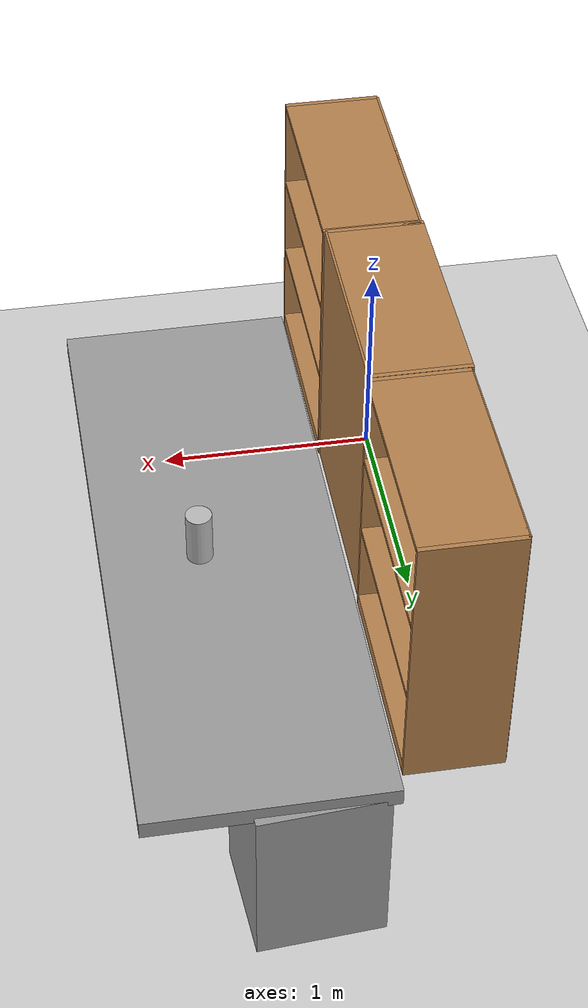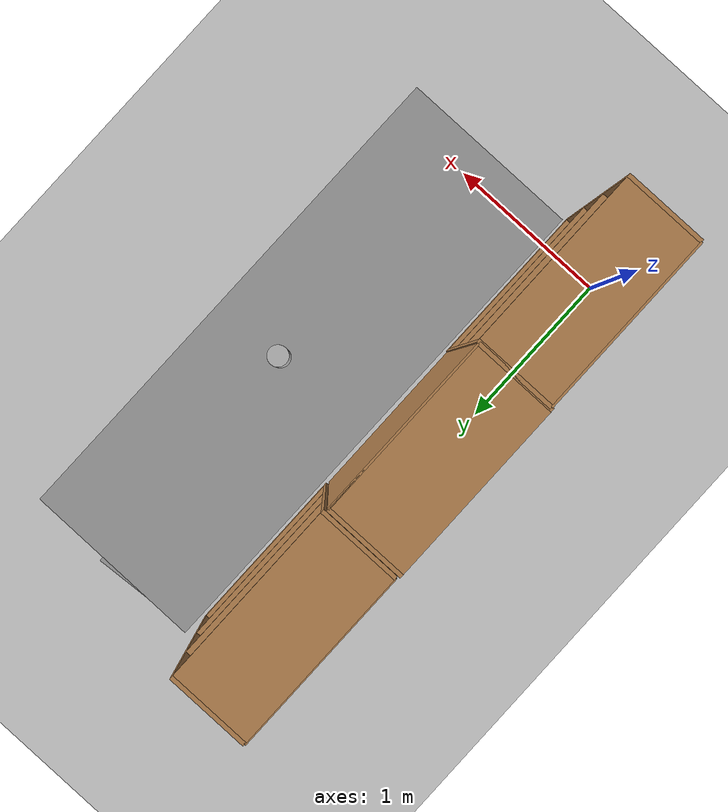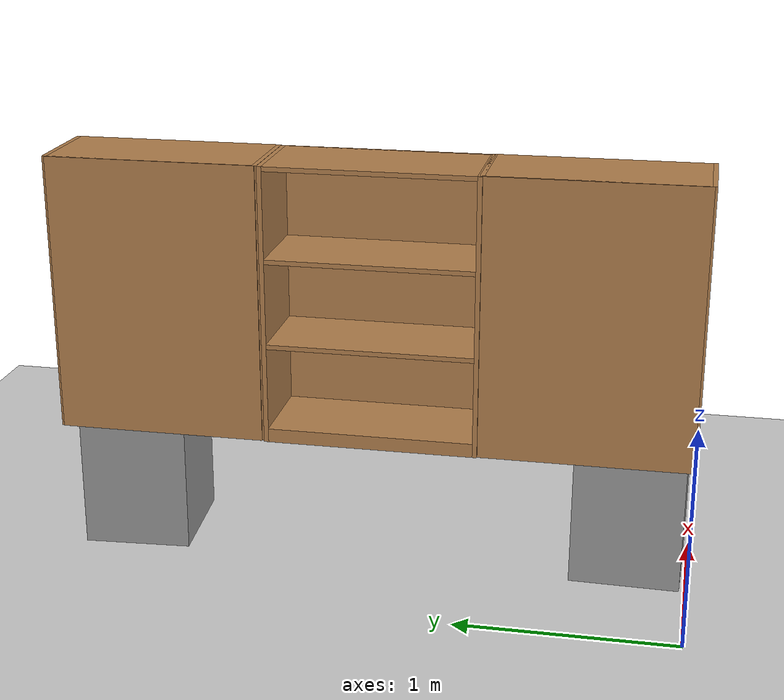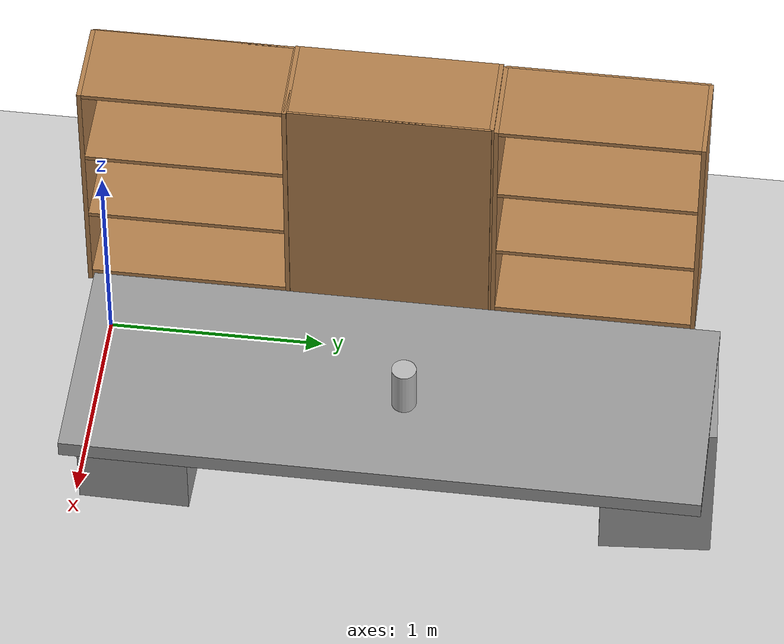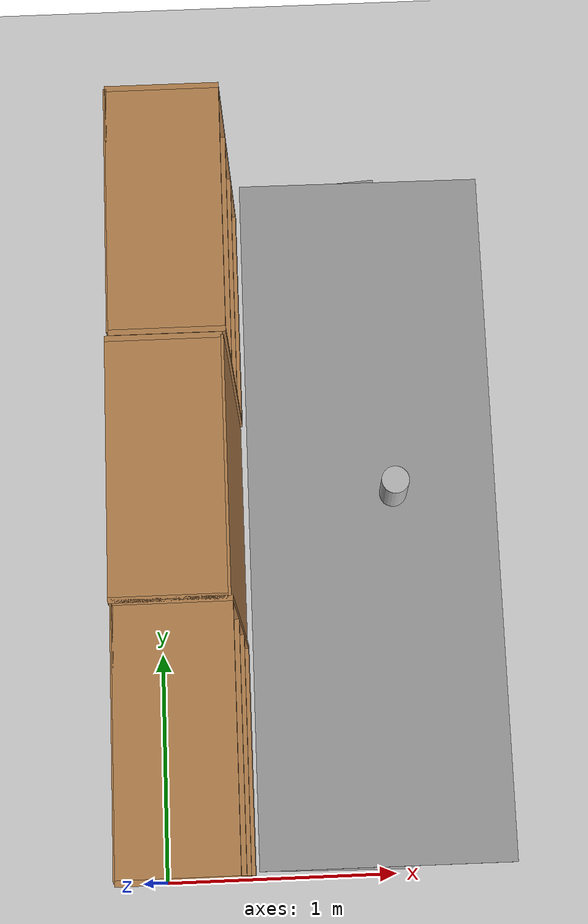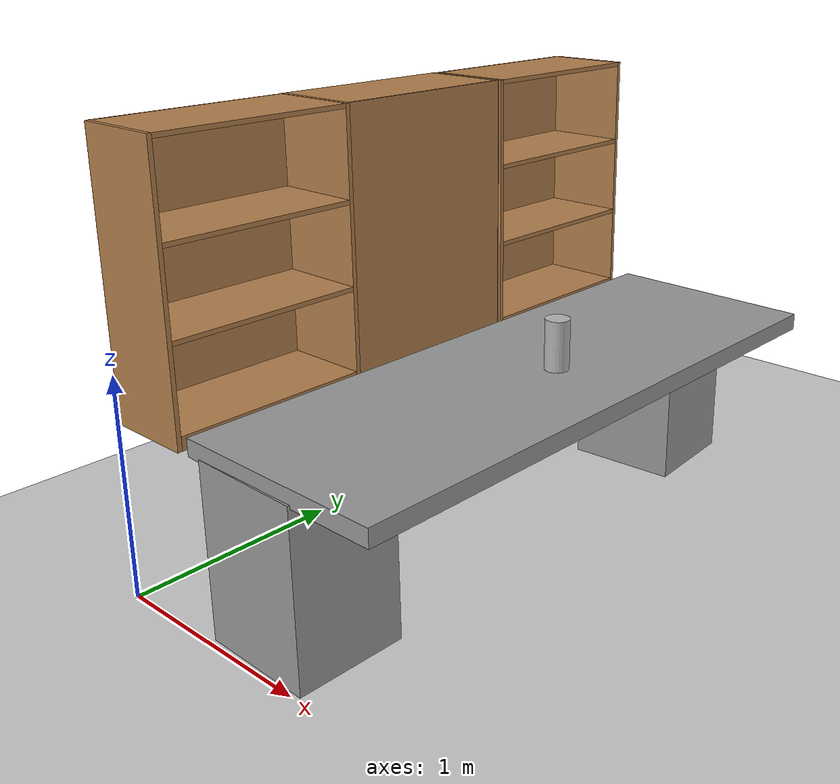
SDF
<sdf version="1.6">
 <world name="default">
  <light name="sun" type="directional">
   <pose>0 0 10 0 -0 0</pose>
   <diffuse>0.8 0.8 0.8 1</diffuse>
   <specular>0.1 0.1 0.1 1</specular>
   <attenuation>
    <range>1000</range>
    <constant>0.9</constant>
    <linear>0.01</linear>
    <quadratic>0.001</quadratic>
   </attenuation>
   <direction>-0.5 0.5 -1</direction>
  </light>
  <model name="ground_plane">
   <static>1</static>
   <link name="link">
    <collision name="collision">
     <geometry><plane><normal>0 0 1</normal><size>100 100</size></plane></geometry>
     <surface><friction><ode><mu>100</mu><mu2>50</mu2></ode></friction></surface>
    </collision>
    <visual name="visual">
     <cast_shadows>0</cast_shadows>
     <geometry><plane><normal>0 0 1</normal><size>100 100</size></plane></geometry>
     <material>
      <script><uri>file://media/materials/scripts/gazebo.material</uri><name>Gazebo/Grey</name></script>
     </material>
    </visual>
   </link>
  </model>
  <gravity>0 0 -9.8</gravity>
  <magnetic_field>6e-06 2.3e-05 -4.2e-05</magnetic_field>
  <atmosphere type="adiabatic"/>
  <physics name="default_physics" default="0" type="ode">
   <max_step_size>0.001</max_step_size>
   <real_time_factor>1</real_time_factor>
   <real_time_update_rate>1000</real_time_update_rate>
  </physics>
  <scene><ambient>0.4 0.4 0.4 1</ambient><background>0.7 0.7 0.7 1</background><shadows>1</shadows></scene>
  <spherical_coordinates>
   <surface_model>EARTH_WGS84</surface_model>
   <latitude_deg>0</latitude_deg>
   <longitude_deg>0</longitude_deg>
   <elevation>0</elevation>
   <heading_deg>0</heading_deg>
  </spherical_coordinates>
  <model name="bookshelf">
   <static>1</static>
   <link name="link">
    <inertial><mass>1</mass></inertial>
    <collision name="back">
     <pose>0 0.005 0.6 0 -0 0</pose>
     <geometry><box><size>0.9 0.01 1.2</size></box></geometry>
    </collision>
    <visual name="visual1">
     <pose>0 0.005 0.6 0 -0 0</pose>
     <geometry><box><size>0.9 0.01 1.2</size></box></geometry>
     <material>
      <script><uri>file://media/materials/scripts/gazebo.material</uri><name>Gazebo/Wood</name></script>
     </material>
    </visual>
    <collision name="left_side">
     <pose>0.45 -0.195 0.6 0 -0 0</pose>
     <geometry><box><size>0.02 0.4 1.2</size></box></geometry>
    </collision>
    <visual name="visual2">
     <pose>0.45 -0.195 0.6 0 -0 0</pose>
     <geometry><box><size>0.02 0.4 1.2</size></box></geometry>
     <material>
      <script><uri>file://media/materials/scripts/gazebo.material</uri><name>Gazebo/Wood</name></script>
     </material>
    </visual>
    <collision name="right_side">
     <pose>-0.45 -0.195 0.6 0 -0 0</pose>
     <geometry><box><size>0.02 0.4 1.2</size></box></geometry>
    </collision>
    <visual name="visual3">
     <pose>-0.45 -0.195 0.6 0 -0 0</pose>
     <geometry><box><size>0.02 0.4 1.2</size></box></geometry>
     <material>
      <script><uri>file://media/materials/scripts/gazebo.material</uri><name>Gazebo/Wood</name></script>
     </material>
    </visual>
    <collision name="bottom">
     <pose>0 -0.195 0.03 0 -0 0</pose>
     <geometry><box><size>0.88 0.4 0.06</size></box></geometry>
    </collision>
    <visual name="visual4">
     <pose>0 -0.195 0.03 0 -0 0</pose>
     <geometry><box><size>0.88 0.4 0.06</size></box></geometry>
     <material>
      <script><uri>file://media/materials/scripts/gazebo.material</uri><name>Gazebo/Wood</name></script>
     </material>
    </visual>
    <collision name="top">
     <pose>0 -0.195 1.19 0 -0 0</pose>
     <geometry><box><size>0.88 0.4 0.02</size></box></geometry>
    </collision>
    <visual name="visual5">
     <pose>0 -0.195 1.19 0 -0 0</pose>
     <geometry><box><size>0.88 0.4 0.02</size></box></geometry>
     <material>
      <script><uri>file://media/materials/scripts/gazebo.material</uri><name>Gazebo/Wood</name></script>
     </material>
    </visual>
    <collision name="low_shelf">
     <pose>0 -0.195 0.43 0 -0 0</pose>
     <geometry><box><size>0.88 0.4 0.02</size></box></geometry>
    </collision>
    <visual name="visual6">
     <pose>0 -0.195 0.43 0 -0 0</pose>
     <geometry><box><size>0.88 0.4 0.02</size></box></geometry>
     <material>
      <script><uri>file://media/materials/scripts/gazebo.material</uri><name>Gazebo/Wood</name></script>
     </material>
    </visual>
    <collision name="high_shelf">
     <pose>0 -0.195 0.8 0 -0 0</pose>
     <geometry><box><size>0.88 0.4 0.02</size></box></geometry>
    </collision>
    <visual name="visual7">
     <pose>0 -0.195 0.8 0 -0 0</pose>
     <geometry><box><size>0.88 0.4 0.02</size></box></geometry>
     <material>
      <script><uri>file://media/materials/scripts/gazebo.material</uri><name>Gazebo/Wood</name></script>
     </material>
    </visual>
   </link>
   <pose>0.022649 0.455872 0.8 0 -0 1.5708</pose>
  </model>
  <model name="bookshelf_clone">
   <static>1</static>
   <link name="link">
    <inertial><mass>1</mass></inertial>
    <collision name="back">
     <pose>0 0.005 0.6 0 -0 0</pose>
     <geometry><box><size>0.9 0.01 1.2</size></box></geometry>
    </collision>
    <visual name="visual1">
     <pose>0 0.005 0.6 0 -0 0</pose>
     <geometry><box><size>0.9 0.01 1.2</size></box></geometry>
     <material>
      <script><uri>file://media/materials/scripts/gazebo.material</uri><name>Gazebo/Wood</name></script>
     </material>
    </visual>
    <collision name="left_side">
     <pose>0.45 -0.195 0.6 0 -0 0</pose>
     <geometry><box><size>0.02 0.4 1.2</size></box></geometry>
    </collision>
    <visual name="visual2">
     <pose>0.45 -0.195 0.6 0 -0 0</pose>
     <geometry><box><size>0.02 0.4 1.2</size></box></geometry>
     <material>
      <script><uri>file://media/materials/scripts/gazebo.material</uri><name>Gazebo/Wood</name></script>
     </material>
    </visual>
    <collision name="right_side">
     <pose>-0.45 -0.195 0.6 0 -0 0</pose>
     <geometry><box><size>0.02 0.4 1.2</size></box></geometry>
    </collision>
    <visual name="visual3">
     <pose>-0.45 -0.195 0.6 0 -0 0</pose>
     <geometry><box><size>0.02 0.4 1.2</size></box></geometry>
     <material>
      <script><uri>file://media/materials/scripts/gazebo.material</uri><name>Gazebo/Wood</name></script>
     </material>
    </visual>
    <collision name="bottom">
     <pose>0 -0.195 0.03 0 -0 0</pose>
     <geometry><box><size>0.88 0.4 0.06</size></box></geometry>
    </collision>
    <visual name="visual4">
     <pose>0 -0.195 0.03 0 -0 0</pose>
     <geometry><box><size>0.88 0.4 0.06</size></box></geometry>
     <material>
      <script><uri>file://media/materials/scripts/gazebo.material</uri><name>Gazebo/Wood</name></script>
     </material>
    </visual>
    <collision name="top">
     <pose>0 -0.195 1.19 0 -0 0</pose>
     <geometry><box><size>0.88 0.4 0.02</size></box></geometry>
    </collision>
    <visual name="visual5">
     <pose>0 -0.195 1.19 0 -0 0</pose>
     <geometry><box><size>0.88 0.4 0.02</size></box></geometry>
     <material>
      <script><uri>file://media/materials/scripts/gazebo.material</uri><name>Gazebo/Wood</name></script>
     </material>
    </visual>
    <collision name="low_shelf">
     <pose>0 -0.195 0.43 0 -0 0</pose>
     <geometry><box><size>0.88 0.4 0.02</size></box></geometry>
    </collision>
    <visual name="visual6">
     <pose>0 -0.195 0.43 0 -0 0</pose>
     <geometry><box><size>0.88 0.4 0.02</size></box></geometry>
     <material>
      <script><uri>file://media/materials/scripts/gazebo.material</uri><name>Gazebo/Wood</name></script>
     </material>
    </visual>
    <collision name="high_shelf">
     <pose>0 -0.195 0.8 0 -0 0</pose>
     <geometry><box><size>0.88 0.4 0.02</size></box></geometry>
    </collision>
    <visual name="visual7">
     <pose>0 -0.195 0.8 0 -0 0</pose>
     <geometry><box><size>0.88 0.4 0.02</size></box></geometry>
     <material>
      <script><uri>file://media/materials/scripts/gazebo.material</uri><name>Gazebo/Wood</name></script>
     </material>
    </visual>
   </link>
   <pose>0.401819 1.3624 0.8 0 0 -1.5708</pose>
  </model>
  <model name="bookshelf_clone_0">
   <static>1</static>
   <link name="link">
    <inertial><mass>1</mass></inertial>
    <collision name="back">
     <pose>0 0.005 0.6 0 -0 0</pose>
     <geometry><box><size>0.9 0.01 1.2</size></box></geometry>
    </collision>
    <visual name="visual1">
     <pose>0 0.005 0.6 0 -0 0</pose>
     <geometry><box><size>0.9 0.01 1.2</size></box></geometry>
     <material>
      <script><uri>file://media/materials/scripts/gazebo.material</uri><name>Gazebo/Wood</name></script>
     </material>
    </visual>
    <collision name="left_side">
     <pose>0.45 -0.195 0.6 0 -0 0</pose>
     <geometry><box><size>0.02 0.4 1.2</size></box></geometry>
    </collision>
    <visual name="visual2">
     <pose>0.45 -0.195 0.6 0 -0 0</pose>
     <geometry><box><size>0.02 0.4 1.2</size></box></geometry>
     <material>
      <script><uri>file://media/materials/scripts/gazebo.material</uri><name>Gazebo/Wood</name></script>
     </material>
    </visual>
    <collision name="right_side">
     <pose>-0.45 -0.195 0.6 0 -0 0</pose>
     <geometry><box><size>0.02 0.4 1.2</size></box></geometry>
    </collision>
    <visual name="visual3">
     <pose>-0.45 -0.195 0.6 0 -0 0</pose>
     <geometry><box><size>0.02 0.4 1.2</size></box></geometry>
     <material>
      <script><uri>file://media/materials/scripts/gazebo.material</uri><name>Gazebo/Wood</name></script>
     </material>
    </visual>
    <collision name="bottom">
     <pose>0 -0.195 0.03 0 -0 0</pose>
     <geometry><box><size>0.88 0.4 0.06</size></box></geometry>
    </collision>
    <visual name="visual4">
     <pose>0 -0.195 0.03 0 -0 0</pose>
     <geometry><box><size>0.88 0.4 0.06</size></box></geometry>
     <material>
      <script><uri>file://media/materials/scripts/gazebo.material</uri><name>Gazebo/Wood</name></script>
     </material>
    </visual>
    <collision name="top">
     <pose>0 -0.195 1.19 0 -0 0</pose>
     <geometry><box><size>0.88 0.4 0.02</size></box></geometry>
    </collision>
    <visual name="visual5">
     <pose>0 -0.195 1.19 0 -0 0</pose>
     <geometry><box><size>0.88 0.4 0.02</size></box></geometry>
     <material>
      <script><uri>file://media/materials/scripts/gazebo.material</uri><name>Gazebo/Wood</name></script>
     </material>
    </visual>
    <collision name="low_shelf">
     <pose>0 -0.195 0.43 0 -0 0</pose>
     <geometry><box><size>0.88 0.4 0.02</size></box></geometry>
    </collision>
    <visual name="visual6">
     <pose>0 -0.195 0.43 0 -0 0</pose>
     <geometry><box><size>0.88 0.4 0.02</size></box></geometry>
     <material>
      <script><uri>file://media/materials/scripts/gazebo.material</uri><name>Gazebo/Wood</name></script>
     </material>
    </visual>
    <collision name="high_shelf">
     <pose>0 -0.195 0.8 0 -0 0</pose>
     <geometry><box><size>0.88 0.4 0.02</size></box></geometry>
    </collision>
    <visual name="visual7">
     <pose>0 -0.195 0.8 0 -0 0</pose>
     <geometry><box><size>0.88 0.4 0.02</size></box></geometry>
     <material>
      <script><uri>file://media/materials/scripts/gazebo.material</uri><name>Gazebo/Wood</name></script>
     </material>
    </visual>
   </link>
   <pose>0.024356 2.28338 0.8 0 -0 1.5708</pose>
  </model>
  <model name="unit_box_0">
   <static>1</static>
   <pose>0.935911 1.44335 0.814252 6.8e-05 0.006626 -0.002254</pose>
   <link name="link">
    <inertial>
     <mass>1</mass>
     <inertia>
      <ixx>0.166667</ixx>
      <ixy>0</ixy>
      <ixz>0</ixz>
      <iyy>0.166667</iyy>
      <iyz>0</iyz>
      <izz>0.166667</izz>
     </inertia>
    </inertial>
    <collision name="collision"><geometry><box><size>1 2.83185 0.0781728</size></box></geometry></collision>
    <visual name="visual">
     <geometry><box><size>1 2.83185 0.0781728</size></box></geometry>
     <material>
      <script><name>Gazebo/Grey</name><uri>file://media/materials/scripts/gazebo.material</uri></script>
     </material>
    </visual>
   </link>
  </model>
  <model name="beer">
   <link name="link">
    <pose>0 0 0.115 0 -0 0</pose>
    <inertial>
     <mass>0.39</mass>
     <inertia><ixx>0.00058</ixx><ixy>0</ixy><ixz>0</ixz><iyy>0.00058</iyy><iyz>0</iyz><izz>0.00019</izz></inertia>
    </inertial>
    <collision name="collision">
     <geometry><cylinder><radius>0.055</radius><length>0.23</length></cylinder></geometry>
    </collision>
    <visual name="visual">
     <geometry><cylinder><radius>0.055</radius><length>0.23</length></cylinder></geometry>
     <material>
      <script>
       <uri>model://beer/materials/scripts</uri>
       <uri>model://beer/materials/textures</uri>
       <name>Beer/Diffuse</name>
      </script>
     </material>
    </visual>
   </link>
   <pose>1.02111 1.50627 0.852778 0.004658 -0.005053 2.40714</pose>
  </model>
  <model name="unit_box_1_0">
   <static>1</static>
   <pose>0.770956 0.275423 0.395767 0.0037 0.001056 -0.020222</pose>
   <link name="link">
    <inertial>
     <mass>1</mass>
     <inertia>
      <ixx>0.166667</ixx>
      <ixy>0</ixy>
      <ixz>0</ixz>
      <iyy>0.166667</iyy>
      <iyz>0</iyz>
      <izz>0.166667</izz>
     </inertia>
    </inertial>
    <collision name="collision"><geometry><box><size>0.53288 0.504267 0.789111</size></box></geometry></collision>
    <visual name="visual">
     <geometry><box><size>0.53288 0.504267 0.789111</size></box></geometry>
     <material>
      <script><name>Gazebo/Grey</name><uri>file://media/materials/scripts/gazebo.material</uri></script>
     </material>
    </visual>
   </link>
  </model>
  <model name="unit_box_1_0_clone">
   <static>1</static>
   <pose>0.757125 2.62671 0.400266 0.003679 0.001469 0.06869</pose>
   <link name="link">
    <inertial>
     <mass>1</mass>
     <inertia>
      <ixx>0.166667</ixx>
      <ixy>0</ixy>
      <ixz>0</ixz>
      <iyy>0.166667</iyy>
      <iyz>0</iyz>
      <izz>0.166667</izz>
     </inertia>
    </inertial>
    <collision name="collision"><geometry><box><size>0.53288 0.504267 0.797903</size></box></geometry></collision>
    <visual name="visual">
     <geometry><box><size>0.53288 0.504267 0.797903</size></box></geometry>
     <material>
      <script><name>Gazebo/Grey</name><uri>file://media/materials/scripts/gazebo.material</uri></script>
     </material>
    </visual>
   </link>
  </model>
 </world>
</sdf>
